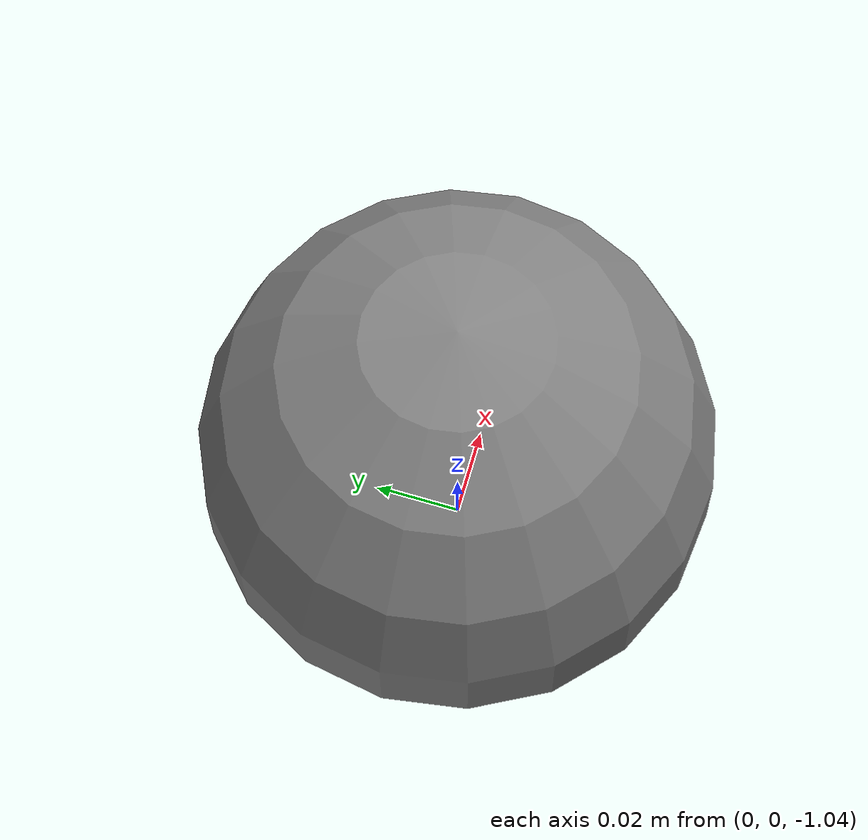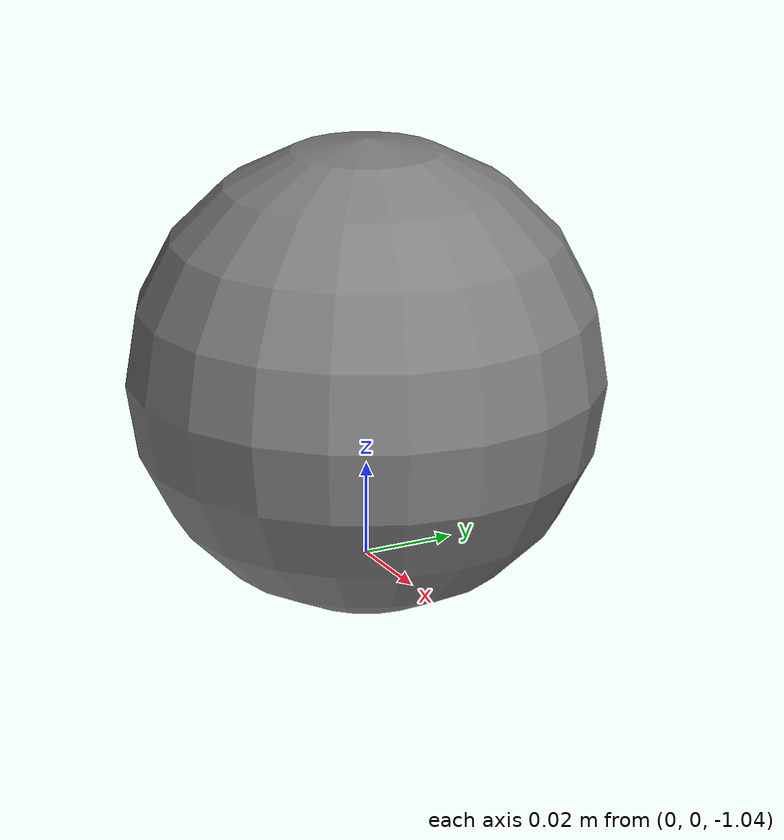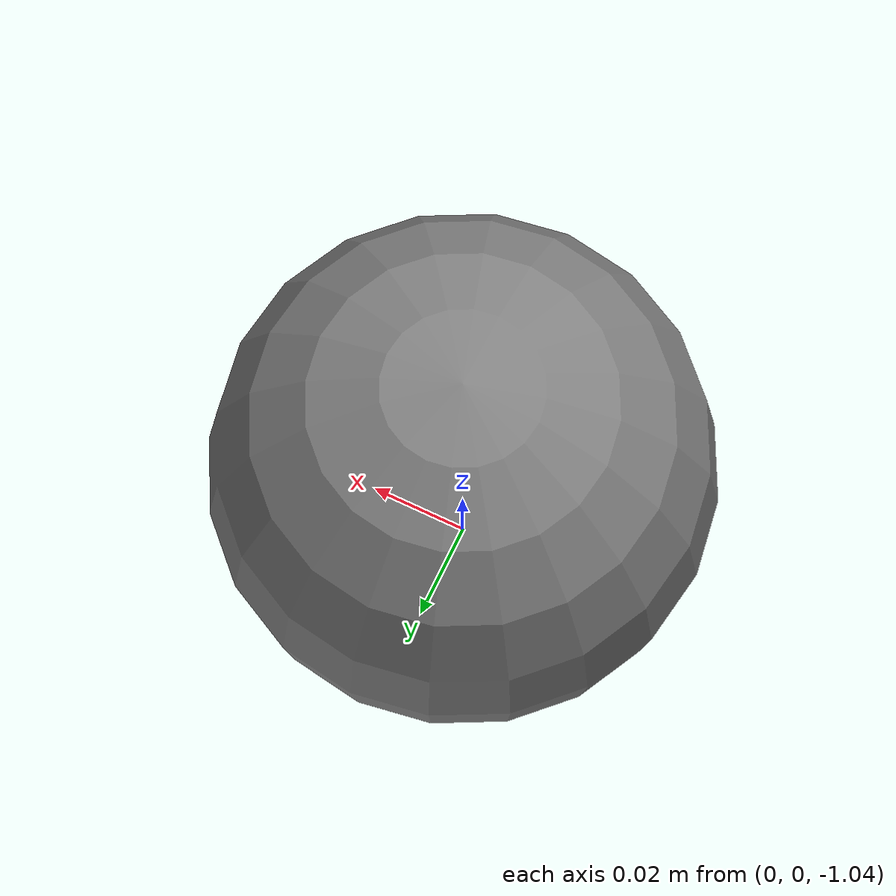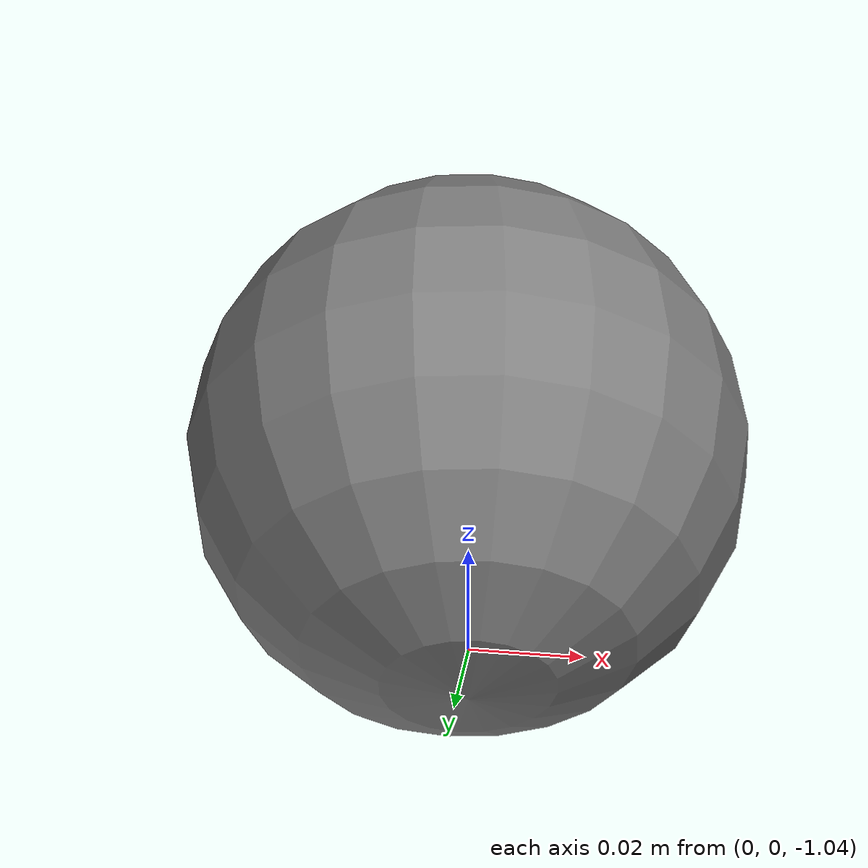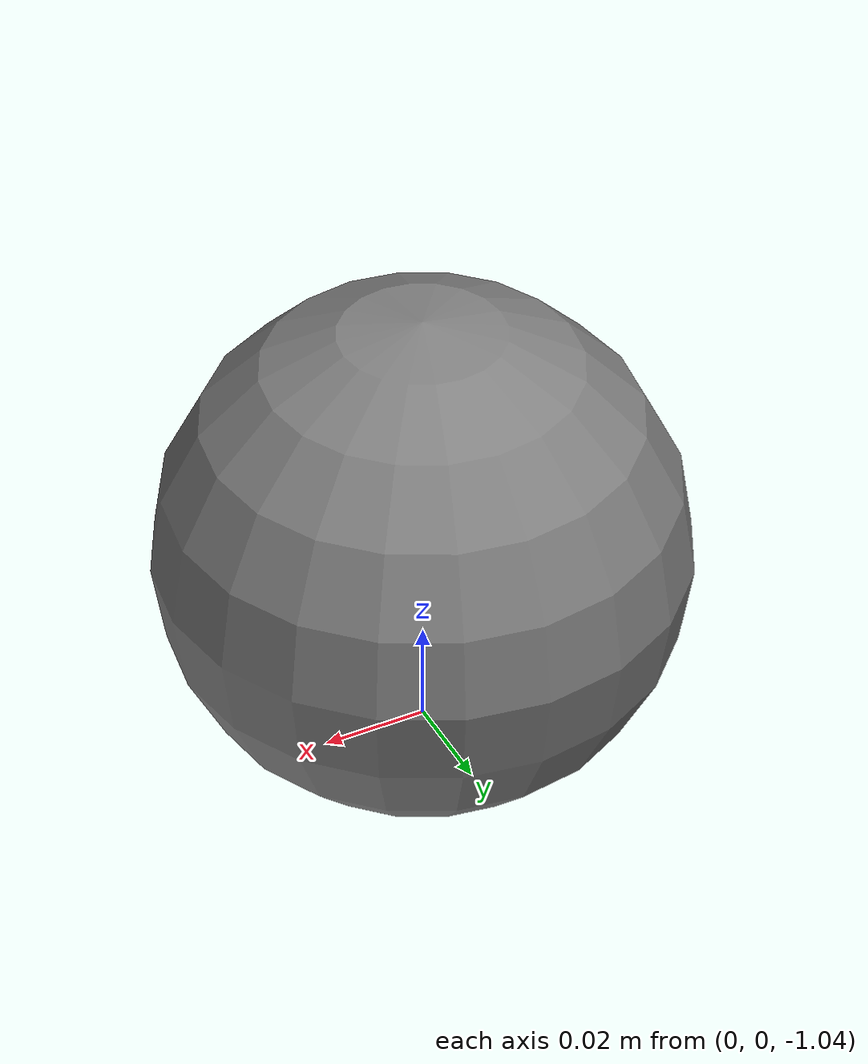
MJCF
<mujoco model="gravity_pendulum">
  <option gravity="0 0 -9.81" integrator="RK4" timestep="0.01"/>
  <worldbody>
    <body name="pendulum" pos="0 0 0">
      <joint name="q" type="hinge" axis="0 1 0" pos="0 0 0" damping="0"/>
      <geom type="sphere" size="0.05" mass="1" pos="0 0 -1"/>
    </body>
  </worldbody>
</mujoco>
